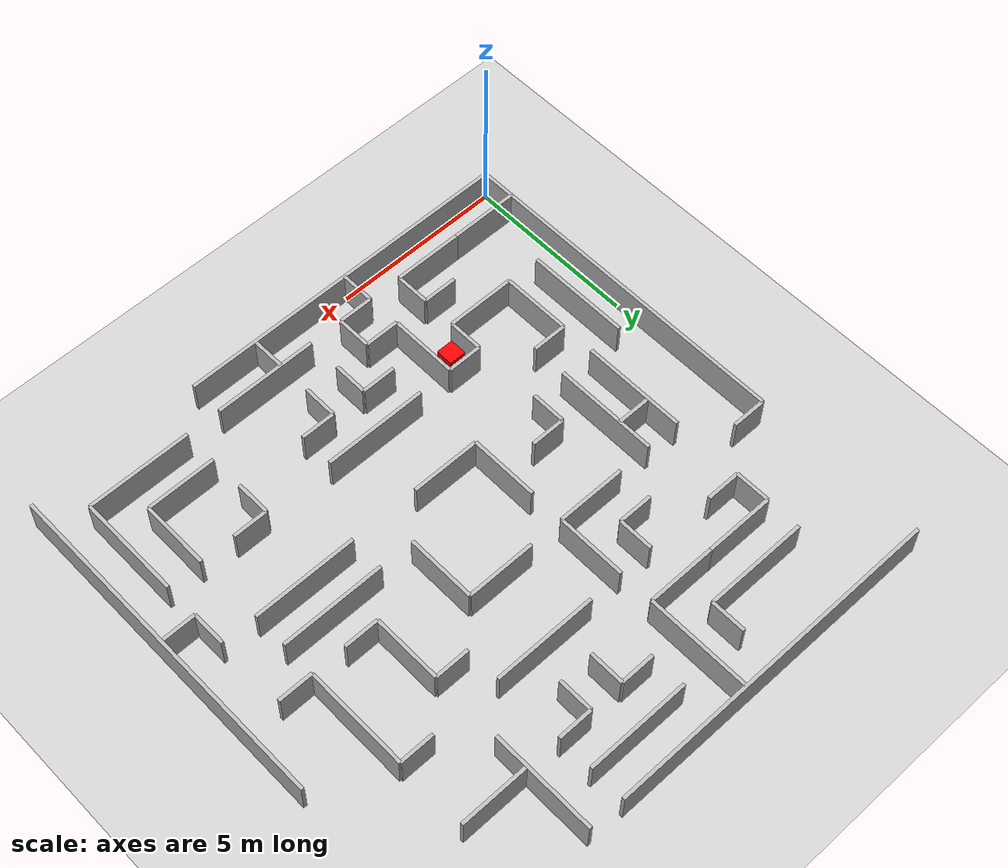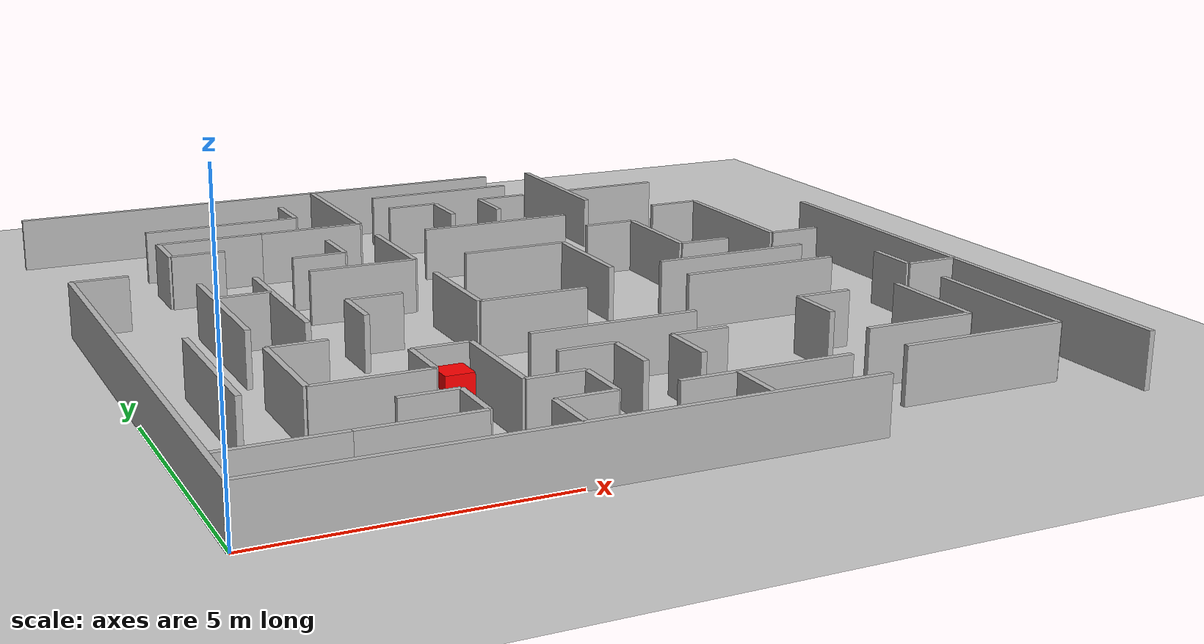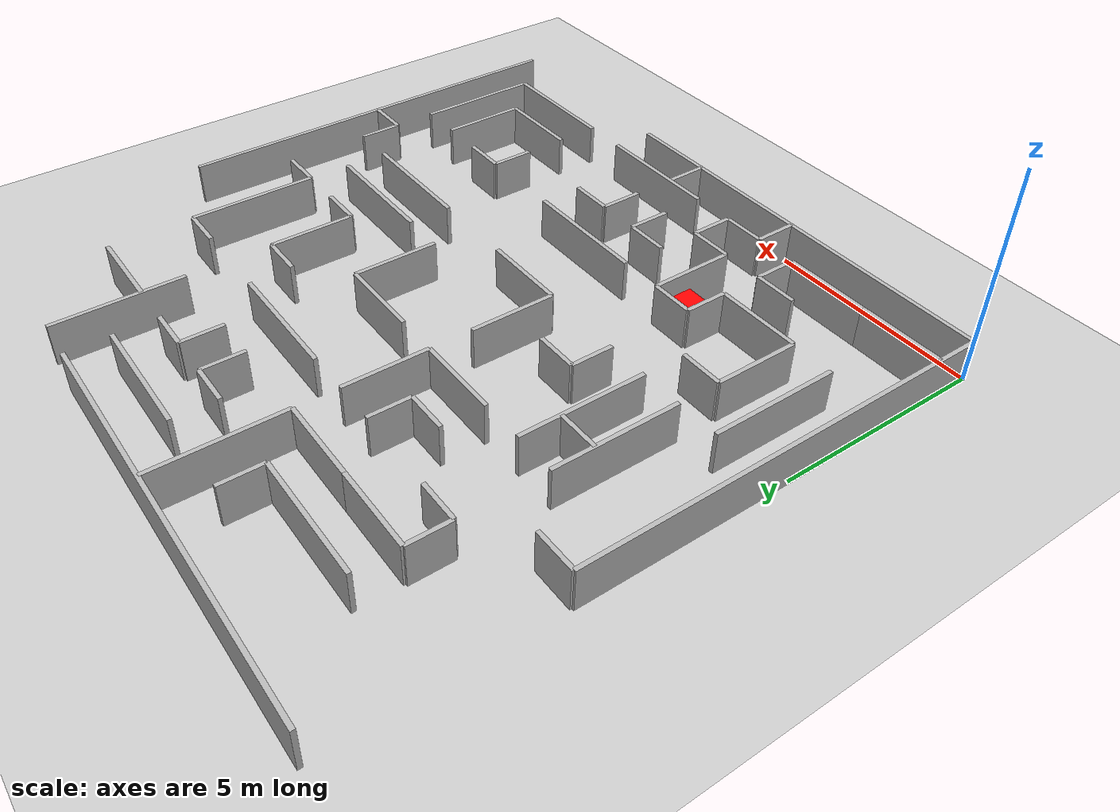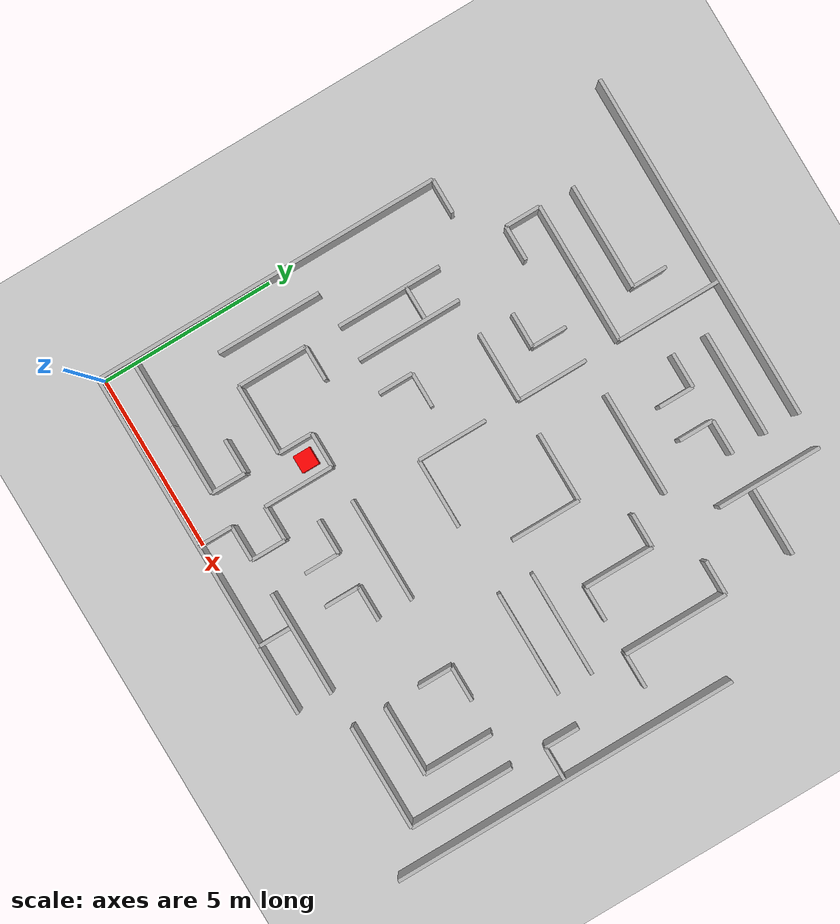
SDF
<sdf version="1.7">
 <world name="multi_robot_world">
  <include><uri>model://ground_plane</uri></include>
  <include><uri>model://sun</uri></include>
  <include><uri>model://wall_10_x</uri><name>wall_1</name><pose>5 0 0.5 0 0 0</pose></include>
  <include><uri>model://wall_10_x</uri><name>wall_3</name><pose>5 15 0.5 0 0 0</pose></include>
  <include><uri>model://wall_10_y</uri><name>wall_5</name><pose>0 5 0.5 0 0 0</pose></include>
  <include><uri>model://wall_10_y</uri><name>wall_7</name><pose>15 5 0.5 0 0 0</pose></include>
  <include><uri>model://wall_2_x</uri><name>wall_9</name><pose>1 1 0.5 0 0 0</pose></include>
  <include><uri>model://wall_2_x</uri><name>wall_10</name><pose>3 1 0.5 0 0 0</pose></include>
  <include><uri>model://wall_1_y</uri><name>wall_11</name><pose>4 1.5 0.5 0 0 0</pose></include>
  <include><uri>model://wall_1_x</uri><name>wall_12</name><pose>3.5 2 0.5 0 0 0</pose></include>
  <include><uri>model://wall_1_y</uri><name>wall_13</name><pose>5 0.5 0.5 0 0 0</pose></include>
  <include><uri>model://wall_1_x</uri><name>wall_14</name><pose>5.5 1 0.5 0 0 0</pose></include>
  <include><uri>model://wall_1_y</uri><name>wall_15</name><pose>6 1.5 0.5 0 0 0</pose></include>
  <include><uri>model://wall_1_x</uri><name>wall_16</name><pose>5.5 2 0.5 0 0 0</pose></include>
  <include><uri>model://wall_2_y</uri><name>wall_17</name><pose>5 3 0.5 0 0 0</pose></include>
  <include><uri>model://wall_1_x</uri><name>wall_18</name><pose>4.5 4 0.5 0 0 0</pose></include>
  <include><uri>model://wall_1_y</uri><name>wall_19</name><pose>4 3.5 0.5 0 0 0</pose></include>
  <include><uri>model://wall_2_x</uri><name>wall_20</name><pose>3 3 0.5 0 0 0</pose></include>
  <include><uri>model://wall_2_y</uri><name>wall_21</name><pose>2 4 0.5 0 0 0</pose></include>
  <include><uri>model://wall_3_y</uri><name>wall_22</name><pose>1 4.5 0.5 0 0 0</pose></include>
  <include><uri>model://wall_3_y</uri><name>wall_23</name><pose>2 7.5 0.5 0 0 0</pose></include>
  <include><uri>model://wall_3_y</uri><name>wall_24</name><pose>3 7.5 0.5 0 0 0</pose></include>
  <include><uri>model://wall_1_x</uri><name>wall_25</name><pose>2.5 8 0.5 0 0 0</pose></include>
  <include><uri>model://wall_3_x</uri><name>wall_26</name><pose>7.5 4 0.5 0 0 0</pose></include>
  <include><uri>model://wall_1_x</uri><name>wall_27</name><pose>6.5 3 0.5 0 0 0</pose></include>
  <include><uri>model://wall_1_x</uri><name>wall_28</name><pose>8.5 3 0.5 0 0 0</pose></include>
  <include><uri>model://wall_1_y</uri><name>wall_29</name><pose>7 2.5 0.5 0 0 0</pose></include>
  <include><uri>model://wall_1_y</uri><name>wall_30</name><pose>8 2.5 0.5 0 0 0</pose></include>
  <include><uri>model://wall_3_x</uri><name>wall_31</name><pose>8.5 1 0.5 0 0 0</pose></include>
  <include><uri>model://wall_1_y</uri><name>wall_32</name><pose>8 0.5 0.5 0 0 0</pose></include>
  <include><uri>model://wall_3_x</uri><name>wall_33</name><pose>12.5 1 0.5 0 0 0</pose></include>
  <include><uri>model://wall_2_x</uri><name>wall_34</name><pose>12 2 0.5 0 0 0</pose></include>
  <include><uri>model://wall_2_y</uri><name>wall_35</name><pose>13 3 0.5 0 0 0</pose></include>
  <include><uri>model://wall_3_y</uri><name>wall_36</name><pose>14 2.5 0.5 0 0 0</pose></include>
  <include><uri>model://wall_3_x</uri><name>wall_38</name><pose>11.5 6 0.5 0 0 0</pose></include>
  <include><uri>model://wall_3_x</uri><name>wall_39</name><pose>11.5 7 0.5 0 0 0</pose></include>
  <include><uri>model://wall_1_x</uri><name>wall_40</name><pose>10.5 10 0.5 0 0 0</pose></include>
  <include><uri>model://wall_1_x</uri><name>wall_41</name><pose>11.5 8 0.5 0 0 0</pose></include>
  <include><uri>model://wall_1_x</uri><name>wall_43</name><pose>13.5 8 0.5 0 0 0</pose></include>
  <include><uri>model://wall_3_y</uri><name>wall_44</name><pose>13 9.5 0.5 0 0 0</pose></include>
  <include><uri>model://wall_3_y</uri><name>wall_45</name><pose>11 13.5 0.5 0 0 0</pose></include>
  <include><uri>model://wall_2_x</uri><name>wall_46</name><pose>12 13 0.5 0 0 0</pose></include>
  <include><uri>model://wall_3_x</uri><name>wall_47</name><pose>8.5 11 0.5 0 0 0</pose></include>
  <include><uri>model://wall_3_x</uri><name>wall_48</name><pose>8.5 14 0.5 0 0 0</pose></include>
  <include><uri>model://wall_1_x</uri><name>wall_49</name><pose>7.5 13 0.5 0 0 0</pose></include>
  <include><uri>model://wall_1_x</uri><name>wall_50</name><pose>9.5 13 0.5 0 0 0</pose></include>
  <include><uri>model://wall_1_y</uri><name>wall_51</name><pose>8 12.5 0.5 0 0 0</pose></include>
  <include><uri>model://wall_1_y</uri><name>wall_52</name><pose>9 12.5 0.5 0 0 0</pose></include>
  <include><uri>model://wall_3_y</uri><name>wall_53</name><pose>6 13.5 0.5 0 0 0</pose></include>
  <include><uri>model://wall_1_x</uri><name>wall_54</name><pose>2.5 5 0.5 0 0 0</pose></include>
  <include><uri>model://wall_2_x</uri><name>wall_55</name><pose>5 12 0.5 0 0 0</pose></include>
  <include><uri>model://wall_2_x</uri><name>wall_56</name><pose>3 12 0.5 0 0 0</pose></include>
  <include><uri>model://wall_1_y</uri><name>wall_57</name><pose>2 11.5 0.5 0 0 0</pose></include>
  <include><uri>model://wall_1_x</uri><name>wall_58</name><pose>2.5 11 0.5 0 0 0</pose></include>
  <include><uri>model://wall_3_x</uri><name>wall_59</name><pose>3.5 13 0.5 0 0 0</pose></include>
  <include><uri>model://wall_1_y</uri><name>wall_61</name><pose>5 13.5 0.5 0 0 0</pose></include>
  <include><uri>model://wall_2_x</uri><name>wall_62</name><pose>5 9 0.5 0 0 0</pose></include>
  <include><uri>model://wall_2_y</uri><name>wall_63</name><pose>6 10 0.5 0 0 0</pose></include>
  <include><uri>model://wall_1_x</uri><name>wall_64</name><pose>4.5 10 0.5 0 0 0</pose></include>
  <include><uri>model://wall_1_y</uri><name>wall_65</name><pose>5 10.5 0.5 0 0 0</pose></include>
  <include><uri>model://wall_2_y</uri><name>wall_66</name><pose>6 7 0.5 0 0 0</pose></include>
  <include><uri>model://wall_2_y</uri><name>wall_67</name><pose>9 8 0.5 0 0 0</pose></include>
  <include><uri>model://wall_2_x</uri><name>wall_68</name><pose>7 6 0.5 0 0 0</pose></include>
  <include><uri>model://wall_2_x</uri><name>wall_69</name><pose>8 9 0.5 0 0 0</pose></include>
  <include><uri>model://wall_2_y</uri><name>wall_70</name><pose>11 9 0.5 0 0 0</pose></include>
  <include><uri>model://wall_1_x</uri><name>wall_71</name><pose>11.5 4 0.5 0 0 0</pose></include>
  <include><uri>model://wall_1_y</uri><name>wall_72</name><pose>11 3.5 0.5 0 0 0</pose></include>
  <include><uri>model://wall_1_y</uri><name>wall_73</name><pose>4 6.5 0.5 0 0 0</pose></include>
  <include><uri>model://wall_1_x</uri><name>wall_74</name><pose>4.5 7 0.5 0 0 0</pose></include>
  <include><uri>model://wall_1_x</uri><name>wall_76</name><pose>0.5 10 0.5 0 0 0</pose></include>
  <include><uri>model://wall_1_x</uri><name>wall_77</name><pose>12.5 11 0.5 0 0 0</pose></include>
  <include><uri>model://wall_1_x</uri><name>wall_78</name><pose>14.5 5 0.5 0 0 0</pose></include>
  <include><uri>model://wall_1_y</uri><name>wall_79</name><pose>14 5.5 0.5 0 0 0</pose></include>
  <model name="target_box">
   <pose>4.5 3.5 0.5 0 0 0</pose>
   <link name="link">
    <collision name="collision"><geometry><box><size>0.5 0.5 0.5</size></box></geometry></collision>
    <visual name="visual">
     <geometry><box><size>0.5 0.5 0.5</size></box></geometry>
     <material><ambient>1 0 0 1</ambient><diffuse>1 0 0 1</diffuse><specular>0.5 0.5 0.5 1</specular></material>
    </visual>
   </link>
  </model>
 </world>
</sdf>

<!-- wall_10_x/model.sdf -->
<sdf version="1.7">
  <model name="wall_10_x">
   <static>true</static>
    <link name="link">
      <collision name="collision">
        <geometry>
          <box>
            <size>10 0.1 1</size>  <!-- default size -->
          </box>
        </geometry>
      </collision>
      <visual name="visual">
        <geometry>
          <box>
            <size>10 0.1 1</size>
          </box>
        </geometry>
      </visual>
    </link>
  </model>
</sdf>

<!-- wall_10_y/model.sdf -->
<sdf version="1.7">
  <model name="wall_10_y">
   <static>true</static>
    <link name="link">
      <collision name="collision">
        <geometry>
          <box>
            <size>0.1 10 1</size>  <!-- default size -->
          </box>
        </geometry>
      </collision>
      <visual name="visual">
        <geometry>
          <box>
            <size>0.1 10 1</size>
          </box>
        </geometry>
      </visual>
    </link>
  </model>
</sdf>

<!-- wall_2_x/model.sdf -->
<sdf version="1.7">
  <model name="wall_2_x">
   <static>true</static>
    <link name="link">
      <collision name="collision">
        <geometry>
          <box>
            <size>2 0.1 1</size>  <!-- default size -->
          </box>
        </geometry>
      </collision>
      <visual name="visual">
        <geometry>
          <box>
            <size>2 0.1 1</size>
          </box>
        </geometry>
      </visual>
    </link>
  </model>
</sdf>

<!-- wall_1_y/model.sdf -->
<sdf version="1.7">
  <model name="wall_1_y">
   <static>true</static>
    <link name="link">
      <collision name="collision">
        <geometry>
          <box>
            <size>0.1 1 1</size>  <!-- default size -->
          </box>
        </geometry>
      </collision>
      <visual name="visual">
        <geometry>
          <box>
            <size>0.1 1 1</size>
          </box>
        </geometry>
      </visual>
    </link>
  </model>
</sdf>

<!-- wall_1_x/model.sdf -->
<sdf version="1.7">
  <model name="wall_1_x">
   <static>true</static>
    <link name="link">
      <collision name="collision">
        <geometry>
          <box>
            <size>1 0.1 1</size>  <!-- default size -->
          </box>
        </geometry>
      </collision>
      <visual name="visual">
        <geometry>
          <box>
            <size>1 0.1 1</size>
          </box>
        </geometry>
      </visual>
    </link>
  </model>
</sdf>

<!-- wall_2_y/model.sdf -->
<sdf version="1.7">
  <model name="wall_2_y">
   <static>true</static>
    <link name="link">
      <collision name="collision">
        <geometry>
          <box>
            <size>0.1 2 1</size>  <!-- default size -->
          </box>
        </geometry>
      </collision>
      <visual name="visual">
        <geometry>
          <box>
            <size>0.1 2 1</size>
          </box>
        </geometry>
      </visual>
    </link>
  </model>
</sdf>

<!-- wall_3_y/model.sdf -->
<sdf version="1.7">
  <model name="wall_3_y">
   <static>true</static>
    <link name="link">
      <collision name="collision">
        <geometry>
          <box>
            <size>0.1 3 1</size>  <!-- default size -->
          </box>
        </geometry>
      </collision>
      <visual name="visual">
        <geometry>
          <box>
            <size>0.1 3 1</size>
          </box>
        </geometry>
      </visual>
    </link>
  </model>
</sdf>

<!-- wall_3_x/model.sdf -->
<sdf version="1.7">
  <model name="wall_3_x">
   <static>true</static>
    <link name="link">
      <collision name="collision">
        <geometry>
          <box>
            <size>3 0.1 1</size>  <!-- default size -->
          </box>
        </geometry>
      </collision>
      <visual name="visual">
        <geometry>
          <box>
            <size>3 0.1 1</size>
          </box>
        </geometry>
      </visual>
    </link>
  </model>
</sdf>
